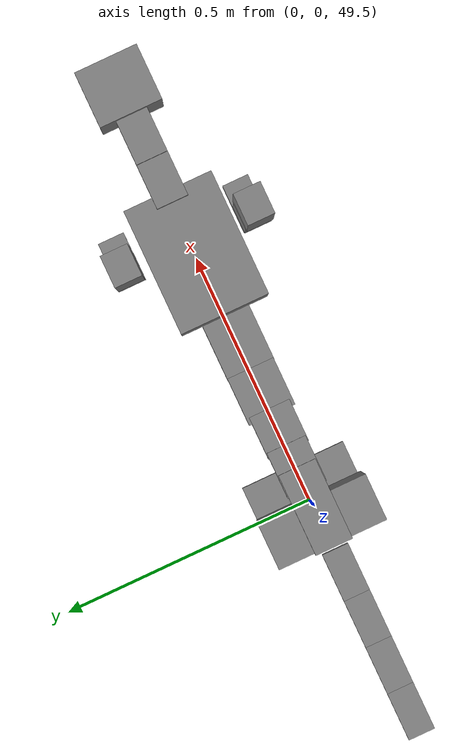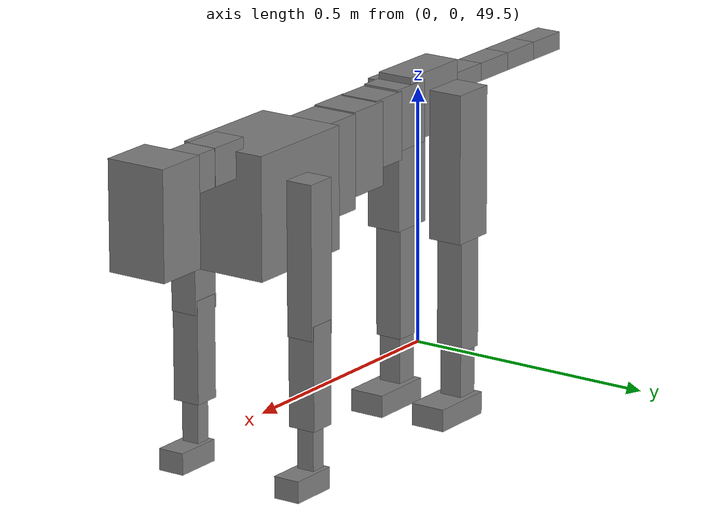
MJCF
<mujoco model="dog">

    <default>
        <joint armature="0.02" stiffness="1" damping="0.2" limited="true"/>
        <geom condim="3" friction="1 0.05 0.05" margin="0.01"/>
        <motor ctrllimited="true" ctrlrange="-1.0 1.0" forcelimited="true" gear="50"/>
    </default>

    <compiler inertiafromgeom="true" angle="radian"/>

    <option timestep="0.016" iterations="50" tolerance="1e-10" solver="Newton" jacobian="dense" cone="pyramidal"/>

    <size nconmax="20000" njmax="60000" nstack="5000000"/>
    <visual>
        <map force="0.1" zfar="30"/>
        <rgba haze="0.15 0.25 0.35 1"/>
        <quality shadowsize="2048"/>
        <global offwidth="800" offheight="800"/>
    </visual>

    <asset>
        <texture type="skybox" builtin="gradient" rgb1="0.3 0.5 0.7" rgb2="0 0 0" width="512" height="512"/>
        <texture name="texplane" type="2d" builtin="checker" rgb1=".2 .3 .4" rgb2=".1 0.15 0.2" width="512" height="512"
                 mark="cross" markrgb=".8 .8 .8"/>
        <texture name="texgeom" type="cube" builtin="flat" mark="cross" width="127" height="1278" rgb1="0.8 0.6 0.4"
                 rgb2="0.8 0.6 0.4" markrgb="1 1 1" random="0.01"/>

        <material name="matplane" reflectance="0.3" texture="texplane" texrepeat="1 1" texuniform="true"/>
        <material name="matgeom" texture="texgeom" texuniform="true" rgba="0.8 0.6 .4 1"/>
    </asset>

    <worldbody>
        <geom name="floor" pos="0 0 0" size="0 0 .25" type="plane" material="matplane" condim="3"/>

        <light directional="false" diffuse=".2 .2 .2" specular="0 0 0" pos="0 0 5" dir="0 0 -1" castshadow="false"/>
        <light mode="targetbodycom" target="torso" directional="false" diffuse=".8 .8 .8" specular="0.3 0.3 0.3"
               pos="0 0 4.0" dir="0 0 -1"/>

        <body name="root" pos="0 0 50">
            <freejoint name="root_1"/>
            <geom type="box" pos="0 0 -0.02" size="0.0774  0.0358  0.063" density="2030"/>

            <body name="spine1" pos="0.054 0 0">
                <joint name="spine1_y" axis="0 1 0" range="0 0.7" limited="true"/>
                <geom type="box" pos="0.02375 0 -0.03" size="0.04375  0.0375  0.05985" density="2030"/>

                <body name="spine2" pos="0.0612 0 0">
                    <joint name="spine2_y" axis="0 1 0" range="-0.15 0.15" limited="true"/>
                    <geom type="box" pos="0.03555  0  -0.04" size="0.04055  0.039  0.06615" density="2030"/>

                    <body name="spine3" pos="0.0730 0 0">
                        <joint name="spine3_y" axis="0 1 0" range="-0.15 0.15" limited="true"/>
                        <geom type="box" pos="0.03555  0  -0.057" size="0.04555  0.0445  0.081" density="2030"/>

                        <body name="spine4" pos="0.0780 0 0">
                            <joint name="spine4_y" axis="0 1 0" range="-0.15 0.15" limited="true"/>
                            <geom type="box" pos="0.05265  0  -0.07" size="0.05265  0.045  0.09135" density="2030"/>

                            <body name="torso" pos="0.1082 0 0">
                                <joint name="torso_y" axis="0 1 0" range="-0.15 0.15" limited="true"/>
                                <geom type="box" pos="0.11925  0  -0.085" size="0.11925  0.085  0.11745"
                                      density="2030"/>

                                <body name="neck1" pos="0.2160  0   0.0180">
                                    <joint name="neck1_y" axis="0 1 0" range="-1.2  -1" limited="true"/>
                                    <geom type="box" pos="0.0423  0  0" size="0.0423  0.03  0.036" density="2325"/>

                                    <body name="neck2" pos="0.0853  0  0">
                                        <joint name="neck2_y" axis="0 1 0" range="0.1  0" limited="true"/>
                                        <geom type="box" pos="0.0423  0  0" size="0.0423  0.03  0.036" density="2325"/>

                                        <body name="head" pos="0.0853  0  0">
                                            <joint name="head_y" axis="0 1 0" range="-0.3  -0.2" limited="true"/>
                                            <geom type="box" pos="0.0531  0  -0.055" size="0.0531  0.06  0.1044"
                                                  density="4030"/>

                                        </body>
                                    </body>
                                </body>

                                <body name="front_shoulder" pos="0.156  0   -0.0480">
                                    <joint name="front_shoulder_y" axis="0 1 0" range="-1 1.5" limited="true"/>
                                    <geom type="box" pos="0 0.13 -0.1200" size="0.0312  0.0267  0.1466" density="1158"/>
                                    <geom type="box" pos="0 -0.13 -0.1200" size="0.0312  0.0267  0.1466"
                                          density="1158"/>

                                    <body name="front_elbow" pos="0  0  -0.2399">
                                        <joint name="front_elbow_y" axis="0 1 0" range="-2 0" limited="true"/>
                                        <geom type="box" pos="0 0.13 -0.0998" size="0.0269  0.0275  0.0998"
                                              density="1081"/>
                                        <geom type="box" pos="0 -0.13 -0.0998" size="0.0269  0.0275  0.0998"
                                              density="1081"/>

                                        <body name="front_wrist" pos="0  0  -0.1995">
                                            <joint name="front_wrist_y" axis="0 1 0" range="-0.2 0" limited="true"/>
                                            <geom type="box" pos="0 0.13 -0.0477" size="0.0158  0.0176  0.0608"
                                                  density="1664"/>
                                            <geom type="box" pos="0 -0.13 -0.0477" size="0.0158  0.0176  0.0608"
                                                  density="1664"/>

                                            <body name="front_finger_end" pos="0  0  -0.0954">
                                                <joint name="front_finger_y" axis="0 1 0" range="-0.4 1"
                                                       limited="true"/>
                                                <geom type="box" pos="0.0264  0.13  -0.0060"
                                                      size="0.0485  0.0264  0.0210" density="1515"/>
                                                <geom type="box" pos="0.0264  -0.13  -0.0060"
                                                      size="0.0485  0.0264  0.0210" density="1515"/>

                                            </body>

                                        </body>
                                    </body>
                                </body>

                            </body>
                        </body>
                    </body>
                </body>
            </body>

            <body name="back_hip" pos="-0.03 0 -0.018">
                <joint name="back_hip_y" axis="0 1 0" range="-1.5 0.3" limited="true"/>
                <geom type="box" pos="0 0.07 -0.1224" size="0.0445  0.0349  0.1452" density="1154"/>
                <geom type="box" pos="0 -0.07 -0.1224" size="0.0445  0.0349  0.1452" density="1154"/>

                <body name="back_knee" pos="0  0  -0.2449">
                    <joint name="back_knee_y" axis="0 1 0" range="0 2.8" limited="true"/>
                    <geom type="box" pos="0 0.07 -0.1132" size="0.0278  0.0274  0.1287" density="1227"/>
                    <geom type="box" pos="0 -0.07 -0.1132" size="0.0278  0.0274  0.1287" density="1227"/>

                    <body name="back_ankle" pos="0  0  -0.2263">
                        <joint name="back_ankle_y" axis="0 1 0" range="-2.2 0" limited="true"/>
                        <geom type="box" pos="0 0.07 -0.0610" size="0.0229  0.0229  0.0723" density="1284"/>
                        <geom type="box" pos="0 -0.07 -0.0610" size="0.0229  0.0229  0.0723" density="1284"/>

                        <body name="back_toe_end" pos="0  0  -0.1220">
                            <joint name="back_toe_y" axis="0 1 0" range="-0.4 1" limited="true"/>
                            <geom type="box" pos="0.0354  0.07  -0.0068" size="0.0648  0.0354  0.0218" density="1515"/>
                            <geom type="box" pos="0.0354  -0.07  -0.0068" size="0.0648  0.0354  0.0218" density="1515"/>

                        </body>
                    </body>
                </body>
            </body>

            <body name="tail1" pos="-0.074 0 -0.006">
                <joint name="tail1_y" axis="0 1 0" range="-0.2 0.2" limited="true"/>
                <geom type="box" pos="-0.0536  0  0" size="0.045  0.025  0.0175" density="1587"/>

                <body name="tail2" pos="-0.09 0 0">
                    <joint name="tail2_y" axis="0 1 0" range="-0.2 0.2" limited="true"/>
                    <geom type="box" pos="-0.0536  0  0" size="0.045  0.025  0.0175" density="1587"/>

                    <body name="tail3" pos="-0.09 0 0">
                        <joint name="tail3_y" axis="0 1 0" range="-0.2 0.2" limited="true"/>
                        <geom type="box" pos="-0.0536  0  0" size="0.045  0.025  0.0175" density="1587"/>

                        <body name="tail4" pos="-0.09 0 0">
                            <joint name="tail4_y" axis="0 1 0" range="-0.2 0.2" limited="true"/>
                            <geom type="box" pos="-0.0536  0  0" size="0.045  0.025  0.0175" density="1587"/>

                        </body>
                    </body>
                </body>
            </body>
        </body>
    </worldbody>

    <actuator>
        <motor joint="spine1_y" forcerange="-150 150     "/>
        <motor joint="spine2_y" forcerange="-150 150     "/>
        <motor joint="spine3_y" forcerange="-150 150     "/>
        <motor joint="spine4_y" forcerange="-150 150     "/>
        <motor joint="torso_y" forcerange="-150 150     "/>
        <motor joint="neck1_y" forcerange="-100 100       "/>
        <motor joint="neck2_y" forcerange="-100 100       "/>
        <motor joint="head_y" forcerange="-150 150       "/>
        <motor joint="front_shoulder_y" forcerange="-131.91 145.96"/>
        <motor joint="front_elbow_y" forcerange="-193.98 106.14"/>
        <motor joint="front_wrist_y" forcerange="-68.57 72.27"/>
        <motor joint="front_finger_y" forcerange="-78.66 22.34"/>
        <motor joint="back_hip_y" forcerange="-384.56 280.54"/>
        <motor joint="back_knee_y" forcerange="-243.47 355.31"/>
        <motor joint="back_angle_y" forcerange="-129.85 136.64"/>
        <motor joint="back_toe_y" forcerange="-134.17 68.80"/>
        <motor joint="tail1_y" forcerange="-50 50     "/>
        <motor joint="tail2_y" forcerange="-50 50     "/>
        <motor joint="tail3_y" forcerange="-50 50     "/>
        <motor joint="tail4_y" forcerange="-50 50     "/>
    </actuator>
</mujoco>
